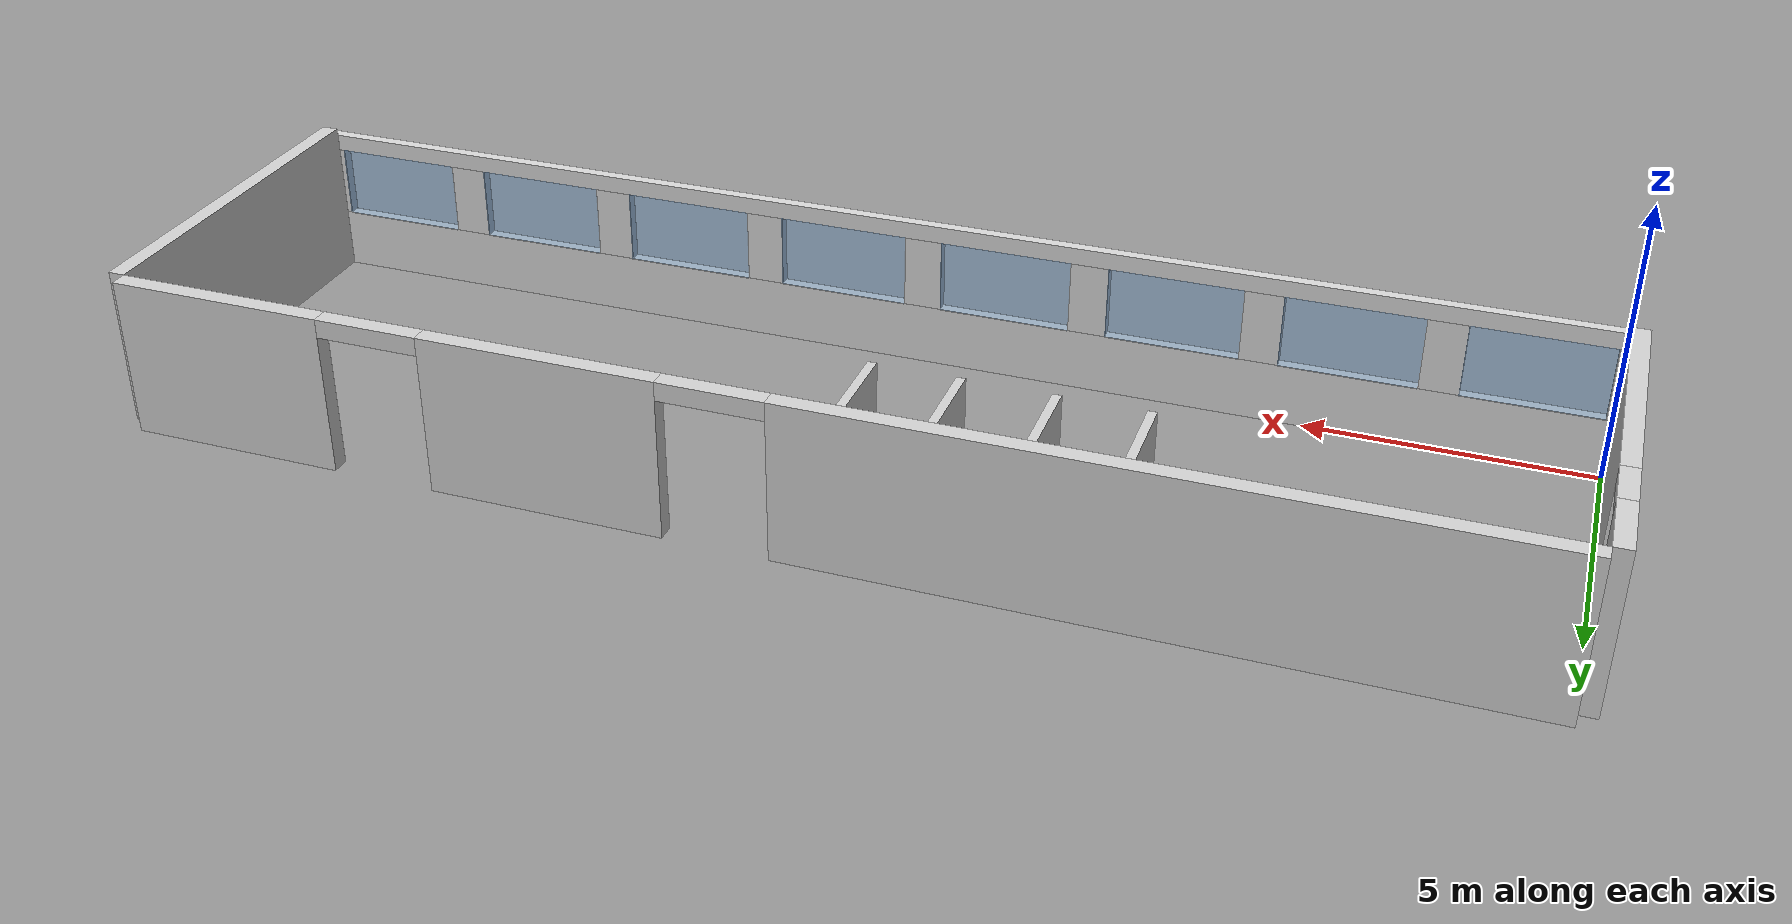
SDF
<?xml version="1.0" ?>
<sdf version="1.9">
  <model name="room_427_walls">
    <static>true</static>
    <link name="walls">
      <collision name="top_solid_1_collision">
        <pose>6.0960 6.7818 1.4351 0 0 0</pose>
        <geometry>
          <box>
            <size>12.1920 0.3048 2.8702</size>
          </box>
        </geometry>
      </collision>
      <visual name="top_solid_1_visual">
        <pose>6.0960 6.7818 1.4351 0 0 0</pose>
        <geometry>
          <box>
            <size>12.1920 0.3048 2.8702</size>
          </box>
        </geometry>
        <material>
          <ambient>0.82 0.82 0.82 1</ambient>
          <diffuse>0.82 0.82 0.82 1</diffuse>
        </material>
      </visual>

      <collision name="top_door_1_lintel_collision">
        <pose>13.1064 6.7818 2.7051 0 0 0</pose>
        <geometry>
          <box>
            <size>1.8288 0.3048 0.3302</size>
          </box>
        </geometry>
      </collision>
      <visual name="top_door_1_lintel_visual">
        <pose>13.1064 6.7818 2.7051 0 0 0</pose>
        <geometry>
          <box>
            <size>1.8288 0.3048 0.3302</size>
          </box>
        </geometry>
        <material>
          <ambient>0.82 0.82 0.82 1</ambient>
          <diffuse>0.82 0.82 0.82 1</diffuse>
        </material>
      </visual>

      <collision name="top_solid_2_collision">
        <pose>16.1036 6.7818 1.4351 0 0 0</pose>
        <geometry>
          <box>
            <size>4.1656 0.3048 2.8702</size>
          </box>
        </geometry>
      </collision>
      <visual name="top_solid_2_visual">
        <pose>16.1036 6.7818 1.4351 0 0 0</pose>
        <geometry>
          <box>
            <size>4.1656 0.3048 2.8702</size>
          </box>
        </geometry>
        <material>
          <ambient>0.82 0.82 0.82 1</ambient>
          <diffuse>0.82 0.82 0.82 1</diffuse>
        </material>
      </visual>

      <collision name="top_door_2_lintel_collision">
        <pose>19.1008 6.7818 2.7051 0 0 0</pose>
        <geometry>
          <box>
            <size>1.8288 0.3048 0.3302</size>
          </box>
        </geometry>
      </collision>
      <visual name="top_door_2_lintel_visual">
        <pose>19.1008 6.7818 2.7051 0 0 0</pose>
        <geometry>
          <box>
            <size>1.8288 0.3048 0.3302</size>
          </box>
        </geometry>
        <material>
          <ambient>0.82 0.82 0.82 1</ambient>
          <diffuse>0.82 0.82 0.82 1</diffuse>
        </material>
      </visual>

      <collision name="top_solid_3_collision">
        <pose>21.9583 6.7818 1.4351 0 0 0</pose>
        <geometry>
          <box>
            <size>3.8862 0.3048 2.8702</size>
          </box>
        </geometry>
      </collision>
      <visual name="top_solid_3_visual">
        <pose>21.9583 6.7818 1.4351 0 0 0</pose>
        <geometry>
          <box>
            <size>3.8862 0.3048 2.8702</size>
          </box>
        </geometry>
        <material>
          <ambient>0.82 0.82 0.82 1</ambient>
          <diffuse>0.82 0.82 0.82 1</diffuse>
        </material>
      </visual>

      <collision name="top_protrusion_1_collision">
        <pose>6.6294 5.9182 1.4351 0 0 0</pose>
        <geometry>
          <box>
            <size>0.1524 1.4224 2.8702</size>
          </box>
        </geometry>
      </collision>
      <visual name="top_protrusion_1_visual">
        <pose>6.6294 5.9182 1.4351 0 0 0</pose>
        <geometry>
          <box>
            <size>0.1524 1.4224 2.8702</size>
          </box>
        </geometry>
        <material>
          <ambient>0.82 0.82 0.82 1</ambient>
          <diffuse>0.82 0.82 0.82 1</diffuse>
        </material>
      </visual>

      <collision name="top_protrusion_2_collision">
        <pose>8.1026 5.9182 1.4351 0 0 0</pose>
        <geometry>
          <box>
            <size>0.1524 1.4224 2.8702</size>
          </box>
        </geometry>
      </collision>
      <visual name="top_protrusion_2_visual">
        <pose>8.1026 5.9182 1.4351 0 0 0</pose>
        <geometry>
          <box>
            <size>0.1524 1.4224 2.8702</size>
          </box>
        </geometry>
        <material>
          <ambient>0.82 0.82 0.82 1</ambient>
          <diffuse>0.82 0.82 0.82 1</diffuse>
        </material>
      </visual>

      <collision name="top_protrusion_3_collision">
        <pose>9.6266 5.9182 1.4351 0 0 0</pose>
        <geometry>
          <box>
            <size>0.1524 1.4224 2.8702</size>
          </box>
        </geometry>
      </collision>
      <visual name="top_protrusion_3_visual">
        <pose>9.6266 5.9182 1.4351 0 0 0</pose>
        <geometry>
          <box>
            <size>0.1524 1.4224 2.8702</size>
          </box>
        </geometry>
        <material>
          <ambient>0.82 0.82 0.82 1</ambient>
          <diffuse>0.82 0.82 0.82 1</diffuse>
        </material>
      </visual>

      <collision name="top_protrusion_4_collision">
        <pose>11.0744 5.9182 1.4351 0 0 0</pose>
        <geometry>
          <box>
            <size>0.1524 1.4224 2.8702</size>
          </box>
        </geometry>
      </collision>
      <visual name="top_protrusion_4_visual">
        <pose>11.0744 5.9182 1.4351 0 0 0</pose>
        <geometry>
          <box>
            <size>0.1524 1.4224 2.8702</size>
          </box>
        </geometry>
        <material>
          <ambient>0.82 0.82 0.82 1</ambient>
          <diffuse>0.82 0.82 0.82 1</diffuse>
        </material>
      </visual>

      <collision name="bottom_strip_collision">
        <pose>11.9507 -0.1000 0.5588 0 0 0</pose>
        <geometry>
          <box>
            <size>24.2062 0.2000 1.1176</size>
          </box>
        </geometry>
      </collision>
      <visual name="bottom_strip_visual">
        <pose>11.9507 -0.1000 0.5588 0 0 0</pose>
        <geometry>
          <box>
            <size>24.2062 0.2000 1.1176</size>
          </box>
        </geometry>
        <material>
          <ambient>0.85 0.85 0.85 1</ambient>
          <diffuse>0.85 0.85 0.85 1</diffuse>
        </material>
      </visual>

      <collision name="top_strip_collision">
        <pose>11.9507 -0.1000 2.5908 0 0 0</pose>
        <geometry>
          <box>
            <size>24.2062 0.2000 0.3048</size>
          </box>
        </geometry>
      </collision>
      <visual name="top_strip_visual">
        <pose>11.9507 -0.1000 2.5908 0 0 0</pose>
        <geometry>
          <box>
            <size>24.2062 0.2000 0.3048</size>
          </box>
        </geometry>
        <material>
          <ambient>0.85 0.85 0.85 1</ambient>
          <diffuse>0.85 0.85 0.85 1</diffuse>
        </material>
      </visual>

      <collision name="bottom_section_1_collision">
        <pose>-0.0254 -0.1000 1.7780 0 0 0</pose>
        <geometry>
          <box>
            <size>0.2540 0.2000 1.3208</size>
          </box>
        </geometry>
      </collision>
      <visual name="bottom_section_1_visual">
        <pose>-0.0254 -0.1000 1.7780 0 0 0</pose>
        <geometry>
          <box>
            <size>0.2540 0.2000 1.3208</size>
          </box>
        </geometry>
        <material>
          <ambient>0.85 0.85 0.85 1</ambient>
          <diffuse>0.85 0.85 0.85 1</diffuse>
        </material>
      </visual>

      <collision name="bottom_section_2_collision">
        <pose>2.8094 -0.1000 1.7780 0 0 0</pose>
        <geometry>
          <box>
            <size>0.6785 0.2000 1.3208</size>
          </box>
        </geometry>
      </collision>
      <visual name="bottom_section_2_visual">
        <pose>2.8094 -0.1000 1.7780 0 0 0</pose>
        <geometry>
          <box>
            <size>0.6785 0.2000 1.3208</size>
          </box>
        </geometry>
        <material>
          <ambient>0.85 0.85 0.85 1</ambient>
          <diffuse>0.85 0.85 0.85 1</diffuse>
        </material>
      </visual>

      <collision name="bottom_section_3_collision">
        <pose>5.8565 -0.1000 1.7780 0 0 0</pose>
        <geometry>
          <box>
            <size>0.6785 0.2000 1.3208</size>
          </box>
        </geometry>
      </collision>
      <visual name="bottom_section_3_visual">
        <pose>5.8565 -0.1000 1.7780 0 0 0</pose>
        <geometry>
          <box>
            <size>0.6785 0.2000 1.3208</size>
          </box>
        </geometry>
        <material>
          <ambient>0.85 0.85 0.85 1</ambient>
          <diffuse>0.85 0.85 0.85 1</diffuse>
        </material>
      </visual>

      <collision name="bottom_section_4_collision">
        <pose>8.9036 -0.1000 1.7780 0 0 0</pose>
        <geometry>
          <box>
            <size>0.6785 0.2000 1.3208</size>
          </box>
        </geometry>
      </collision>
      <visual name="bottom_section_4_visual">
        <pose>8.9036 -0.1000 1.7780 0 0 0</pose>
        <geometry>
          <box>
            <size>0.6785 0.2000 1.3208</size>
          </box>
        </geometry>
        <material>
          <ambient>0.85 0.85 0.85 1</ambient>
          <diffuse>0.85 0.85 0.85 1</diffuse>
        </material>
      </visual>

      <collision name="bottom_section_5_collision">
        <pose>11.9507 -0.1000 1.7780 0 0 0</pose>
        <geometry>
          <box>
            <size>0.6785 0.2000 1.3208</size>
          </box>
        </geometry>
      </collision>
      <visual name="bottom_section_5_visual">
        <pose>11.9507 -0.1000 1.7780 0 0 0</pose>
        <geometry>
          <box>
            <size>0.6785 0.2000 1.3208</size>
          </box>
        </geometry>
        <material>
          <ambient>0.85 0.85 0.85 1</ambient>
          <diffuse>0.85 0.85 0.85 1</diffuse>
        </material>
      </visual>

      <collision name="bottom_section_6_collision">
        <pose>14.9978 -0.1000 1.7780 0 0 0</pose>
        <geometry>
          <box>
            <size>0.6785 0.2000 1.3208</size>
          </box>
        </geometry>
      </collision>
      <visual name="bottom_section_6_visual">
        <pose>14.9978 -0.1000 1.7780 0 0 0</pose>
        <geometry>
          <box>
            <size>0.6785 0.2000 1.3208</size>
          </box>
        </geometry>
        <material>
          <ambient>0.85 0.85 0.85 1</ambient>
          <diffuse>0.85 0.85 0.85 1</diffuse>
        </material>
      </visual>

      <collision name="bottom_section_7_collision">
        <pose>18.0449 -0.1000 1.7780 0 0 0</pose>
        <geometry>
          <box>
            <size>0.6785 0.2000 1.3208</size>
          </box>
        </geometry>
      </collision>
      <visual name="bottom_section_7_visual">
        <pose>18.0449 -0.1000 1.7780 0 0 0</pose>
        <geometry>
          <box>
            <size>0.6785 0.2000 1.3208</size>
          </box>
        </geometry>
        <material>
          <ambient>0.85 0.85 0.85 1</ambient>
          <diffuse>0.85 0.85 0.85 1</diffuse>
        </material>
      </visual>

      <collision name="bottom_section_8_collision">
        <pose>21.0920 -0.1000 1.7780 0 0 0</pose>
        <geometry>
          <box>
            <size>0.6785 0.2000 1.3208</size>
          </box>
        </geometry>
      </collision>
      <visual name="bottom_section_8_visual">
        <pose>21.0920 -0.1000 1.7780 0 0 0</pose>
        <geometry>
          <box>
            <size>0.6785 0.2000 1.3208</size>
          </box>
        </geometry>
        <material>
          <ambient>0.85 0.85 0.85 1</ambient>
          <diffuse>0.85 0.85 0.85 1</diffuse>
        </material>
      </visual>

      <collision name="bottom_section_9_collision">
        <pose>23.9268 -0.1000 1.7780 0 0 0</pose>
        <geometry>
          <box>
            <size>0.2540 0.2000 1.3208</size>
          </box>
        </geometry>
      </collision>
      <visual name="bottom_section_9_visual">
        <pose>23.9268 -0.1000 1.7780 0 0 0</pose>
        <geometry>
          <box>
            <size>0.2540 0.2000 1.3208</size>
          </box>
        </geometry>
        <material>
          <ambient>0.85 0.85 0.85 1</ambient>
          <diffuse>0.85 0.85 0.85 1</diffuse>
        </material>
      </visual>

      <visual name="bottom_window_1_glass_visual">
        <pose>1.2859 0.0100 1.7780 0 0 0</pose>
        <geometry>
          <box>
            <size>2.3685 0.0200 1.3208</size>
          </box>
        </geometry>
        <material>
          <ambient>0.3 0.6 0.9 0.35</ambient>
          <diffuse>0.3 0.6 0.9 0.35</diffuse>
        </material>
      </visual>

      <visual name="bottom_window_2_glass_visual">
        <pose>4.3330 0.0100 1.7780 0 0 0</pose>
        <geometry>
          <box>
            <size>2.3685 0.0200 1.3208</size>
          </box>
        </geometry>
        <material>
          <ambient>0.3 0.6 0.9 0.35</ambient>
          <diffuse>0.3 0.6 0.9 0.35</diffuse>
        </material>
      </visual>

      <visual name="bottom_window_3_glass_visual">
        <pose>7.3801 0.0100 1.7780 0 0 0</pose>
        <geometry>
          <box>
            <size>2.3685 0.0200 1.3208</size>
          </box>
        </geometry>
        <material>
          <ambient>0.3 0.6 0.9 0.35</ambient>
          <diffuse>0.3 0.6 0.9 0.35</diffuse>
        </material>
      </visual>

      <visual name="bottom_window_4_glass_visual">
        <pose>10.4272 0.0100 1.7780 0 0 0</pose>
        <geometry>
          <box>
            <size>2.3685 0.0200 1.3208</size>
          </box>
        </geometry>
        <material>
          <ambient>0.3 0.6 0.9 0.35</ambient>
          <diffuse>0.3 0.6 0.9 0.35</diffuse>
        </material>
      </visual>

      <visual name="bottom_window_5_glass_visual">
        <pose>13.4742 0.0100 1.7780 0 0 0</pose>
        <geometry>
          <box>
            <size>2.3685 0.0200 1.3208</size>
          </box>
        </geometry>
        <material>
          <ambient>0.3 0.6 0.9 0.35</ambient>
          <diffuse>0.3 0.6 0.9 0.35</diffuse>
        </material>
      </visual>

      <visual name="bottom_window_6_glass_visual">
        <pose>16.5213 0.0100 1.7780 0 0 0</pose>
        <geometry>
          <box>
            <size>2.3685 0.0200 1.3208</size>
          </box>
        </geometry>
        <material>
          <ambient>0.3 0.6 0.9 0.35</ambient>
          <diffuse>0.3 0.6 0.9 0.35</diffuse>
        </material>
      </visual>

      <visual name="bottom_window_7_glass_visual">
        <pose>19.5684 0.0100 1.7780 0 0 0</pose>
        <geometry>
          <box>
            <size>2.3685 0.0200 1.3208</size>
          </box>
        </geometry>
        <material>
          <ambient>0.3 0.6 0.9 0.35</ambient>
          <diffuse>0.3 0.6 0.9 0.35</diffuse>
        </material>
      </visual>

      <visual name="bottom_window_8_glass_visual">
        <pose>22.6155 0.0100 1.7780 0 0 0</pose>
        <geometry>
          <box>
            <size>2.3685 0.0200 1.3208</size>
          </box>
        </geometry>
        <material>
          <ambient>0.3 0.6 0.9 0.35</ambient>
          <diffuse>0.3 0.6 0.9 0.35</diffuse>
        </material>
      </visual>

      <collision name="left_solid_1_collision">
        <pose>-0.1524 2.2098 1.4351 0 0 0</pose>
        <geometry>
          <box>
            <size>0.3048 4.4196 2.8702</size>
          </box>
        </geometry>
      </collision>
      <visual name="left_solid_1_visual">
        <pose>-0.1524 2.2098 1.4351 0 0 0</pose>
        <geometry>
          <box>
            <size>0.3048 4.4196 2.8702</size>
          </box>
        </geometry>
        <material>
          <ambient>0.82 0.82 0.82 1</ambient>
          <diffuse>0.82 0.82 0.82 1</diffuse>
        </material>
      </visual>

      <collision name="left_door_1_lintel_collision">
        <pose>-0.1524 4.8768 2.7051 0 0 0</pose>
        <geometry>
          <box>
            <size>0.3048 0.9144 0.3302</size>
          </box>
        </geometry>
      </collision>
      <visual name="left_door_1_lintel_visual">
        <pose>-0.1524 4.8768 2.7051 0 0 0</pose>
        <geometry>
          <box>
            <size>0.3048 0.9144 0.3302</size>
          </box>
        </geometry>
        <material>
          <ambient>0.82 0.82 0.82 1</ambient>
          <diffuse>0.82 0.82 0.82 1</diffuse>
        </material>
      </visual>

      <collision name="left_solid_2_collision">
        <pose>-0.1524 5.9817 1.4351 0 0 0</pose>
        <geometry>
          <box>
            <size>0.3048 1.2954 2.8702</size>
          </box>
        </geometry>
      </collision>
      <visual name="left_solid_2_visual">
        <pose>-0.1524 5.9817 1.4351 0 0 0</pose>
        <geometry>
          <box>
            <size>0.3048 1.2954 2.8702</size>
          </box>
        </geometry>
        <material>
          <ambient>0.82 0.82 0.82 1</ambient>
          <diffuse>0.82 0.82 0.82 1</diffuse>
        </material>
      </visual>

      <collision name="right_wall_full_collision">
        <pose>24.0538 3.3147 1.4351 0 0 0</pose>
        <geometry>
          <box>
            <size>0.3048 6.6294 2.8702</size>
          </box>
        </geometry>
      </collision>
      <visual name="right_wall_full_visual">
        <pose>24.0538 3.3147 1.4351 0 0 0</pose>
        <geometry>
          <box>
            <size>0.3048 6.6294 2.8702</size>
          </box>
        </geometry>
        <material>
          <ambient>0.82 0.82 0.82 1</ambient>
          <diffuse>0.82 0.82 0.82 1</diffuse>
        </material>
      </visual>
    </link>
  </model>
</sdf>
